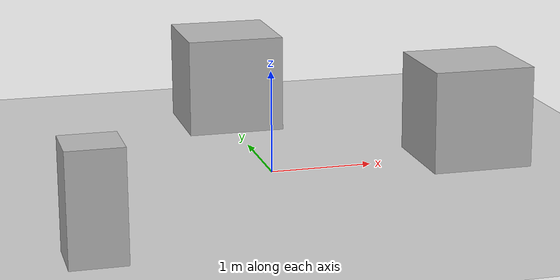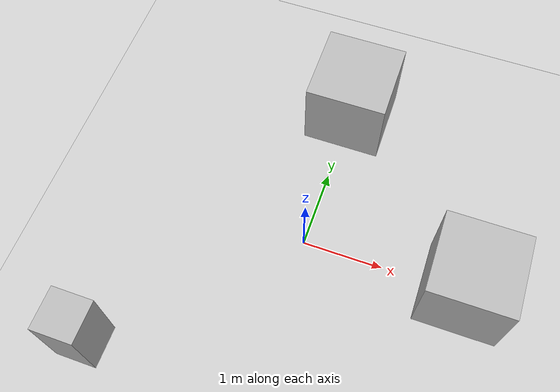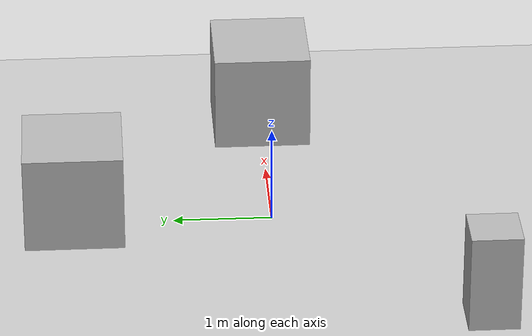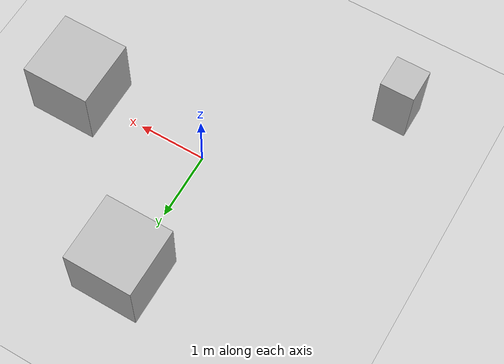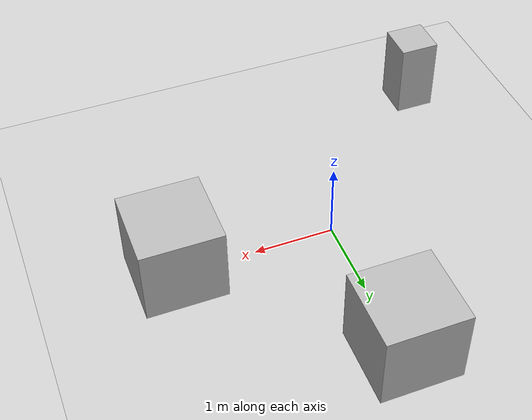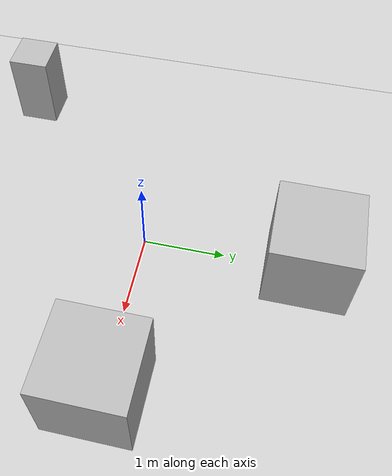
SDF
<?xml version="1.0" ?>
<sdf version="1.5">
  <world name="default">

    <!-- A global light source -->
    <include>
      <uri>model://sun</uri>
    </include>

    <!-- A ground plane -->
    <include>
      <uri>model://ground_plane</uri>
    </include>

    <!-- Box obstacle 1 -->
    <model name="box1">
      <static>true</static>
      <link name="link">
        <visual name="visual">
          <geometry>
            <box>
              <size>1 1 1</size>
            </box>
          </geometry>
        </visual>
        <collision name="collision">
          <geometry>
            <box>
              <size>1 1 1</size>
            </box>
          </geometry>
        </collision>
      </link>
      <pose>2 0 0.5 0 0 0</pose>
    </model>

    <!-- Box obstacle 2 -->
    <model name="box2">
      <static>true</static>
      <link name="link">
        <visual name="visual">
          <geometry>
            <box>
              <size>1 1 1</size>
            </box>
          </geometry>
        </visual>
        <collision name="collision">
          <geometry>
            <box>
              <size>1 1 1</size>
            </box>
          </geometry>
        </collision>
      </link>
      <pose>0 2 0.5 0 0 0</pose>
    </model>

    <!-- Box obstacle 3 -->
    <model name="box3">
      <static>true</static>
      <link name="link">
        <visual name="visual">
          <geometry>
            <box>
              <size>0.5 0.5 1</size>
            </box>
          </geometry>
        </visual>
        <collision name="collision">
          <geometry>
            <box>
              <size>0.5 0.5 1</size>
            </box>
          </geometry>
        </collision>
      </link>
      <pose>-2 -2 0.5 0 0 0</pose>
    </model>

  </world>
</sdf>
